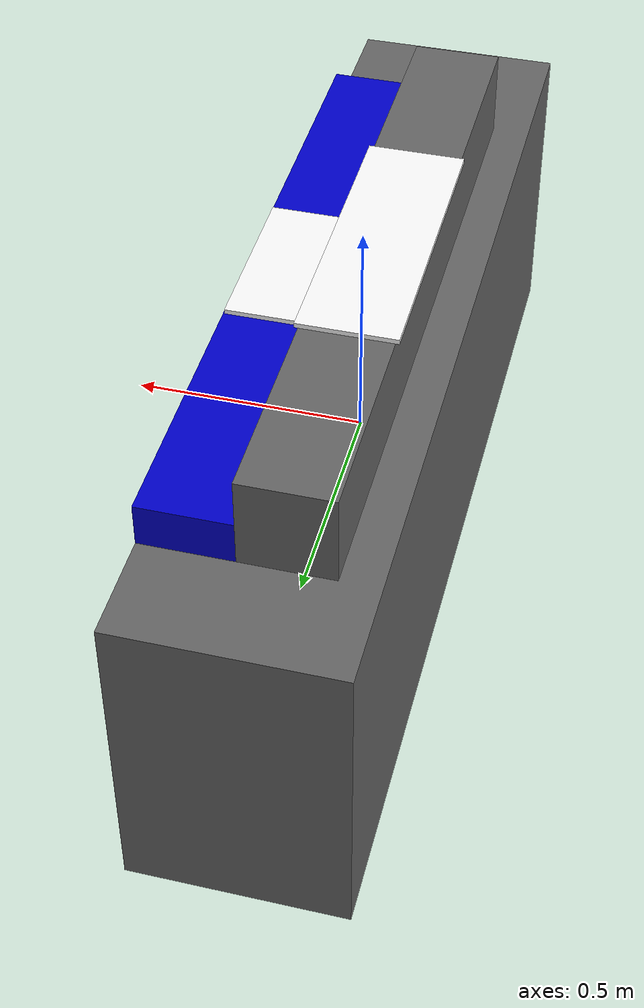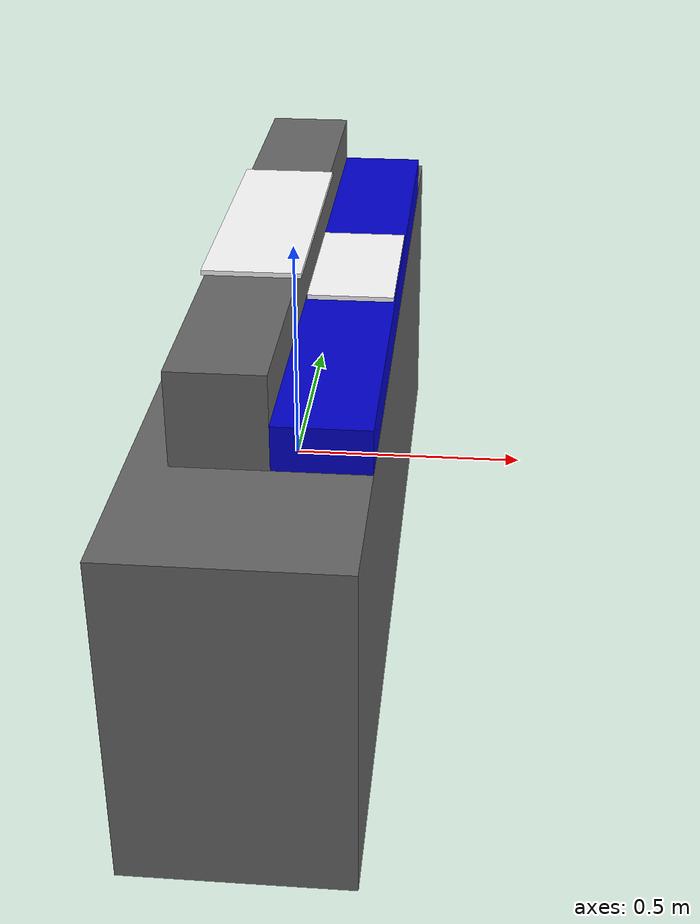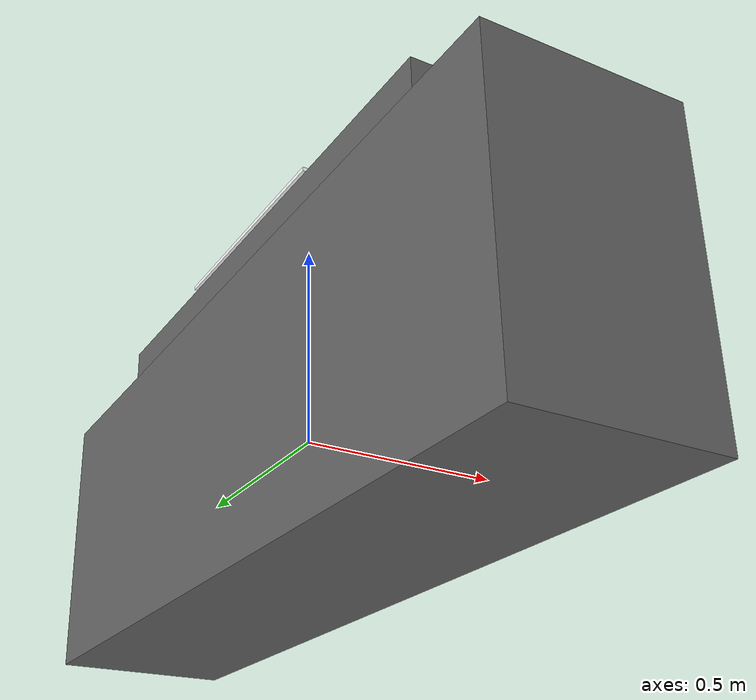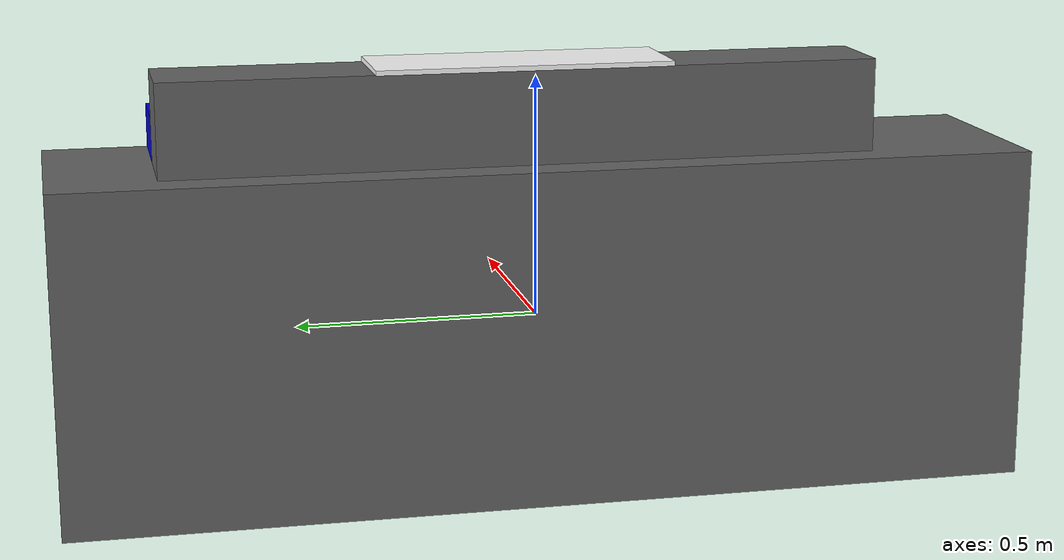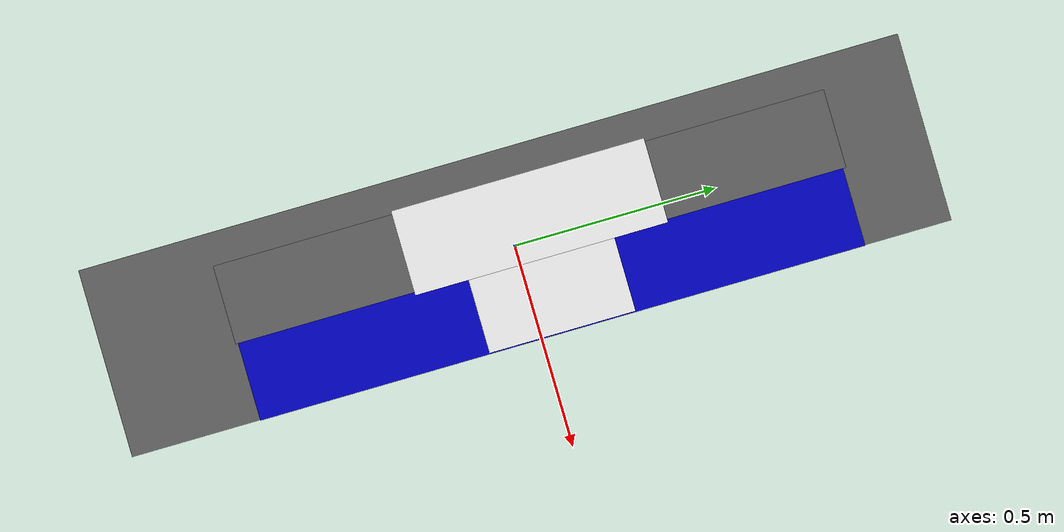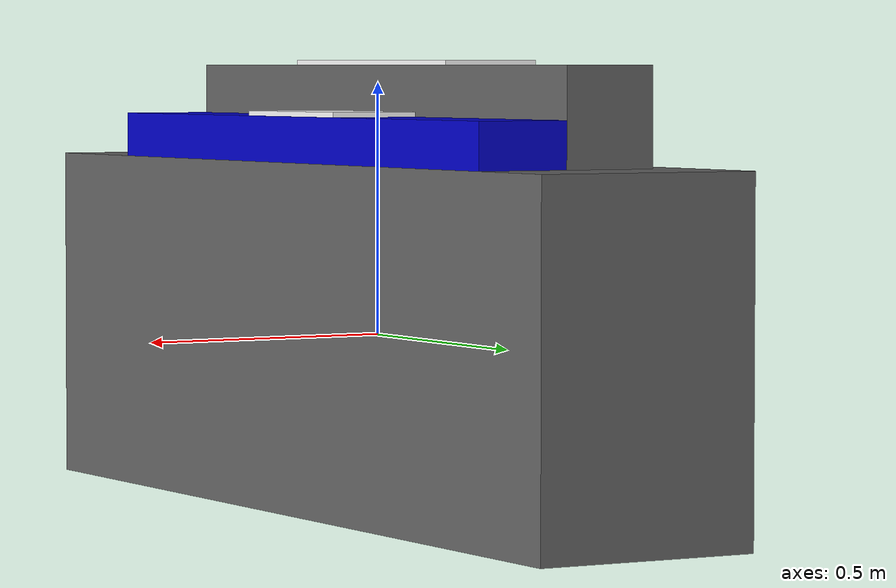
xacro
<?xml version="1.0" encoding="UTF-8"?>
<robot xmlns:xacro="http://www.ros.org/wiki/xacro" name="station">

  <material name="blue">
    <color rgba="0 0 0.8 1"/>
  </material>
  <material name="black">
    <color rgba="0 0 0 1"/>
  </material>
  <material name="white">
    <color rgba="1 1 1 1"/>
  </material>
  <material name="light_grey"><color rgba="0.4 0.4 0.4 1.0" /></material>

  <link name="station_base_link">

    <visual>
      <geometry>
        <box size="0.45 1.98 0.69"/>
      </geometry>
      <origin xyz="0 0 0"/>
      <material name="light_grey"/>
    </visual>

    <collision>
      <origin xyz="0 0 0"/>
      <geometry>
        <box size="0.13 0.18 0.05"/>
      </geometry>
    </collision>

  </link>

  <link name="2ndb">

    <visual>
      <geometry>
        <box size="0.185 1.45 0.19"/>
      </geometry>
      <origin xyz="0 0 0"/>
      <material name="light_grey"/>
    </visual>

    <collision>
      <origin xyz="0 0 0"/>
      <geometry>
        <box size="0.13 0.18 0.005"/>
      </geometry>
    </collision>

  </link>

  <link name="3ndb">

    <visual>
      <geometry>
        <box size="0.185 1.45 0.09"/>
      </geometry>
      <origin xyz="0 0 0"/>
      <material name="blue"/>
    </visual>

    <collision>
      <origin xyz="0 0 0"/>
      <geometry>
        <box size="0.185 1.45 0.09"/>
      </geometry>
    </collision>

  </link>

  <link name="plate1">

    <visual>
      <geometry>
        <box size="0.18 0.35 0.01"/>
      </geometry>
      <origin xyz="0 0 0"/>
      <material name="white"/>
    </visual>

    <collision>
      <origin xyz="0 0 0"/>
      <geometry>
        <box size="0.18 0.35 0.01"/>
      </geometry>
    </collision>

  <joint name="joint2" type="fixed">
    <parent link="2ndb"/>
    <child link="3ndb"/>
    <origin xyz="0.185 0 -0.05"/>
  </joint>

  </link>

  <link name="plate2">

    <visual>
      <geometry>
        <box size="0.2 0.6 0.01"/>
      </geometry>
      <origin xyz="0 0 0"/>
      <material name="white"/>
    </visual>

    <collision>
      <origin xyz="0 0 0"/>
      <geometry>
        <box size="0.2 0.6 0.01"/>
      </geometry>
    </collision>

  <joint name="joint2" type="fixed">
    <parent link="2ndb"/>
    <child link="3ndb"/>
    <origin xyz="0.185 0 -0.05"/>
  </joint>

  </link>

  <joint name="joint1" type="fixed">
    <parent link="station_base_link"/>
    <child link="2ndb"/>
    <origin xyz="-0.0525 0.05 0.44"/>
  </joint>

  <joint name="joint2" type="fixed">
    <parent link="2ndb"/>
    <child link="3ndb"/>
    <origin xyz="0.185 0 -0.05"/>
  </joint>

  <joint name="joint3" type="fixed">
    <parent link="3ndb"/>
    <child link="plate1"/>
    <origin xyz="0 0 0.05"/>
  </joint>

  <joint name="joint4" type="fixed">
    <parent link="2ndb"/>
    <child link="plate2"/>
    <origin xyz="0 0 0.1"/>
  </joint>

</robot>
